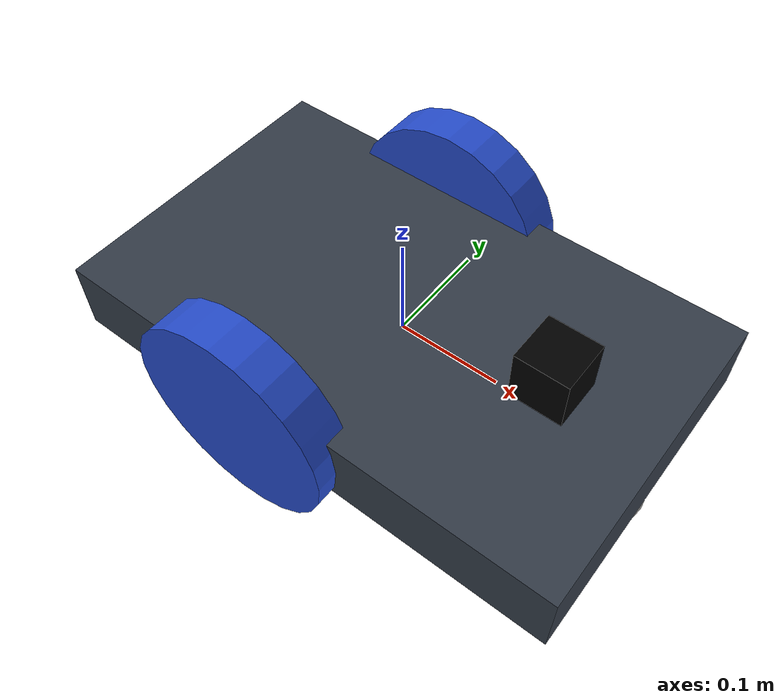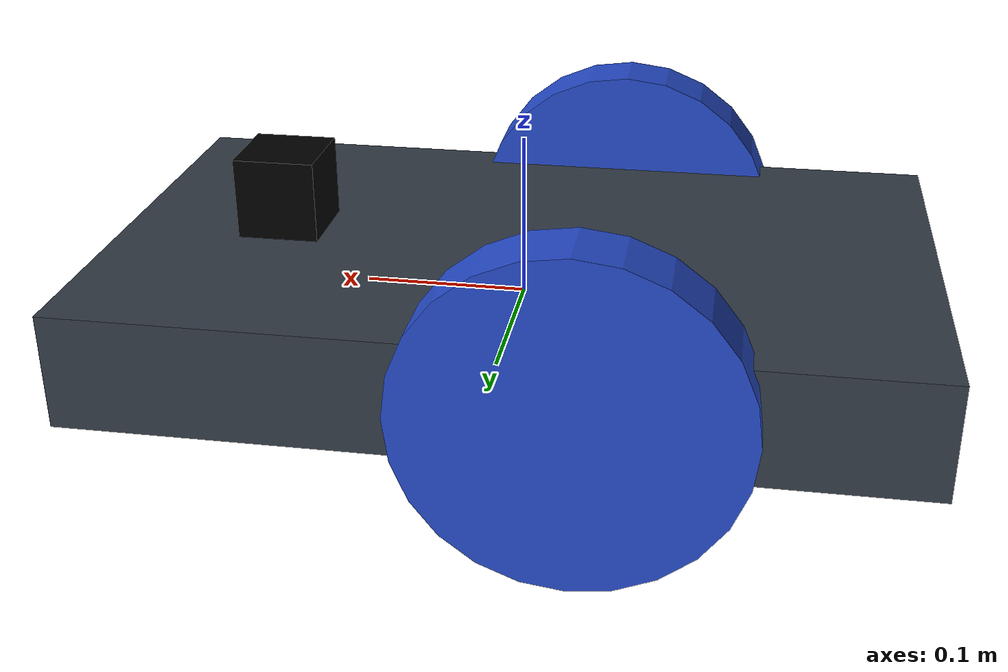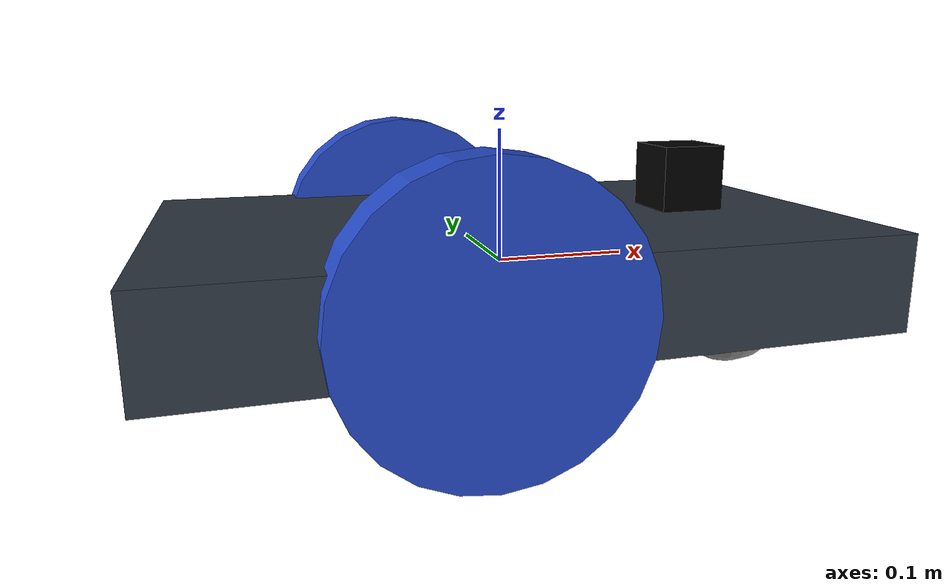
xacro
<?xml version="1.0" ?>
<robot name="mouse" xmlns:xacro="http://www.ros.org/wiki/xacro">
  <material name="black">
    <color rgba="0.0 0.0 0.0 1.0"/>
  </material>
  <material name="blue">
    <color rgba="0.203125 0.23828125 0.28515625 1.0"/>
  </material>
  <material name="green">
    <color rgba="0.0 0.8 0.0 1.0"/>
  </material>
  <material name="grey">
    <color rgba="0.2 0.2 0.2 1.0"/>
  </material>
  <material name="orange">
    <color rgba="1.0 0.423529411765 0.0392156862745 1.0"/>
  </material>
  <material name="brown">
    <color rgba="0.870588235294 0.811764705882 0.764705882353 1.0"/>
  </material>
  <material name="red">
    <color rgba="0.80078125 0.12890625 0.1328125 1.0"/>
  </material>
  <material name="white">
    <color rgba="1.0 1.0 1.0 1.0"/>
  </material>

  <gazebo reference="link_chassis">
    <material>Gazebo/Orange</material>
  </gazebo>
  <gazebo reference="link_caster">
    <material>Gazebo/Gray</material>
  </gazebo>
  <gazebo reference="link_left_wheel">
    <material>Gazebo/Blue</material>
  </gazebo>
  <gazebo reference="link_right_wheel">
    <material>Gazebo/Blue</material>
  </gazebo>

  <!-- Robot description -->
  <link name="link_chassis">
    <collision name="collision_chassis">
      <geometry>
        <box size="0.5 0.3 0.07"/>
      </geometry>
    </collision>
    <visual>
      <origin rpy="0 0 0" xyz="0 0 0"/>
      <geometry>
        <box size="0.5 0.3 0.07"/>
      </geometry>
      <material name="blue"/>
    </visual>
  </link>

  <joint name="fixed_caster_joint" type="fixed">
    <origin rpy="0 0 0" xyz="0 0 0"/>
    <child link="link_caster"/>
    <parent link="link_chassis"/>
  </joint>

  <link name="link_caster">
    <collision name="caster_front_collision">
      <origin rpy="0 0 0" xyz="0.2 0 -0.05"/>
      <geometry>
        <sphere radius="0.05"/>
      </geometry>
      <surface>
        <friction>
          <ode>
            <mu>0</mu>
            <mu2>0</mu2>
            <slip1>1.0</slip1>
            <slip2>1.0</slip2>
          </ode>
        </friction>
      </surface>
    </collision>
    <visual name="caster_front_visual">
      <origin rpy="0 0 0" xyz="0.2 0 -0.05"/>
      <geometry>
        <sphere radius="0.05"/>
      </geometry>
    </visual>
  </link>

  <joint name="fixed_base_joint" type="fixed">
    <origin rpy="0 0 0" xyz="0 0 0"/>
    <child link="chassis_inertia"/>
    <parent link="link_chassis"/>
  </joint>

  <link name="chassis_inertia">
    <inertial>
      <mass value="5"/>
      <origin rpy="0 0 0" xyz="0 0 0.1"/>
      <inertia ixx="0.0395416666667" ixy="0" ixz="0" iyy="0.106208333333" iyz="0" izz="0.106208333333"/>
    </inertial>
  </link>

  <link name="link_right_wheel">
    <inertial>
      <mass value="0.2"/>
      <origin rpy="0 1.5707 1.5707" xyz="0 0 0"/>
      <inertia ixx="0.000526666666667" ixy="0" ixz="0" iyy="0.000526666666667" iyz="0" izz="0.001"/>
    </inertial>
    <collision name="link_right_wheel_collision">
      <origin rpy="0 1.5707 1.5707" xyz="0 0 0"/>
      <geometry>
        <cylinder length="0.04" radius="0.1"/>
      </geometry>
    </collision>
    <visual name="link_right_wheel_visual">
      <origin rpy="0 1.5707 1.5707" xyz="0 0 0"/>
      <geometry>
        <cylinder length="0.04" radius="0.1"/>
      </geometry>
    </visual>
  </link>

  <joint name="joint_right_wheel" type="continuous">
    <origin rpy="0 0 0" xyz="-0.05 0.15 0"/>
    <child link="link_right_wheel"/>
    <parent link="link_chassis"/>
    <axis rpy="0 0 0" xyz="0 1 0"/>
    <limit effort="10000" velocity="1000"/>
    <joint_properties damping="1.0" friction="1.0"/>
  </joint>

  <link name="link_left_wheel">
    <inertial>
      <mass value="0.2"/>
      <origin rpy="0 1.5707 1.5707" xyz="0 0 0"/>
      <inertia ixx="0.000526666666667" ixy="0" ixz="0" iyy="0.000526666666667" iyz="0" izz="0.001"/>
    </inertial>
    <collision name="link_left_wheel_collision">
      <origin rpy="0 1.5707 1.5707" xyz="0 0 0"/>
      <geometry>
        <cylinder length="0.04" radius="0.1"/>
      </geometry>
    </collision>
    <visual name="link_left_wheel_visual">
      <origin rpy="0 1.5707 1.5707" xyz="0 0 0"/>
      <geometry>
        <cylinder length="0.04" radius="0.1"/>
      </geometry>
    </visual>
  </link>

  <joint name="joint_left_wheel" type="continuous">
    <origin rpy="0 0 0" xyz="-0.05 -0.15 0"/>
    <child link="link_left_wheel"/>
    <parent link="link_chassis"/>
    <axis rpy="0 0 0" xyz="0 1 0"/>
    <limit effort="10000" velocity="1000"/>
    <joint_properties damping="1.0" friction="1.0"/>
  </joint>

  <!-- Simulation behavior -->
  <gazebo reference="link_left_wheel">
    <mu1>0.1</mu1>
    <mu2>0.1</mu2>
    <kp>500000.0</kp>
    <kd>10.0</kd>
    <minDepth>0.001</minDepth>
    <maxVel>0.1</maxVel>
    <fdir1>1 0 0</fdir1>
  </gazebo>

  <gazebo reference="link_right_wheel">
    <mu1>0.1</mu1>
    <mu2>0.1</mu2>
    <kp>500000.0</kp>
    <kd>10.0</kd>
    <minDepth>0.001</minDepth>
    <maxVel>0.1</maxVel>
    <fdir1>1 0 0</fdir1>
  </gazebo>

  <gazebo reference="link_chassis">
    <mu1>0.1</mu1>
    <mu2>0.1</mu2>
    <kp>1000000.0</kp>
    <kd>100.0</kd>
    <minDepth>0.001</minDepth>
    <maxVel>1.0</maxVel>
  </gazebo>

  <!-- IMU Sensor -->
  <link name="imu_link"/>

  <joint name="imu_joint" type="fixed">
    <parent link="link_chassis"/>
    <child link="imu_link"/>
    <origin xyz="0 0 0" rpy="0 0 0"/>
  </joint>

  <gazebo reference="imu_link">
    <sensor type="imu" name="imu">
      <always_on>true</always_on>
      <visualize>true</visualize>
    </sensor>
    <material>Gazebo/Grey</material>
  </gazebo>

  <gazebo>
    <plugin name="imu_plugin" filename="libgazebo_ros_imu.so">
      <alwaysOn>true</alwaysOn>
      <bodyName>imu_link</bodyName>
      <frameName>imu_link</frameName>
      <topicName>imu</topicName>
      <serviceName>imu_service</serviceName>
      <gaussianNoise>0.0</gaussianNoise>
      <updateRate>200</updateRate>
      <imu>
        <noise>
          <type>gaussian</type>
          <rate>
            <mean>0.0</mean>
            <stddev>2e-4</stddev>
            <bias_mean>0.0000075</bias_mean>
            <bias_stddev>0.0000008</bias_stddev>
          </rate>
          <accel>
            <mean>0.0</mean>
            <stddev>1.7e-2</stddev>
            <bias_mean>0.1</bias_mean>
            <bias_stddev>0.001</bias_stddev>
          </accel>
        </noise>
      </imu>
    </plugin>
  </gazebo>

  <!-- LiDAR Sensor -->
  <joint name="scan_joint" type="fixed">
    <parent link="link_chassis"/>
    <child link="link_scan"/>
    <origin xyz="0.15 0 0.06" rpy="0 0 -1.57079"/>
  </joint>

  <link name="link_scan">
    <visual>
      <origin xyz="0 0 0" rpy="0 0 0"/>
      <geometry>
        <box size="0.05 0.05 0.05"/>
      </geometry>
      <material name="black"/>
    </visual>
    <collision>
      <origin xyz="0 0 0" rpy="0 0 0"/>
      <geometry>
        <box size="0.05 0.05 0.05"/>
      </geometry>
    </collision>
    <inertial>
      <mass value="0.1" />
      <origin xyz="0 0 0" />
      <inertia ixx="0.001" ixy="0.0" ixz="0.0" iyy="0.001" iyz="0.0" izz="0.001" />
    </inertial>
  </link>

  <gazebo reference="link_scan">
    <sensor type="ray" name="lidar_sensor">
      <pose>0 0 0 0 0 0</pose>
      <visualize>true</visualize>
      <update_rate>5</update_rate>
      <ray>
        <scan>
          <horizontal>
            <samples>360</samples>
            <resolution>1</resolution>
            <min_angle>0.0</min_angle>
            <max_angle>3.14159</max_angle>
          </horizontal>
        </scan>
        <range>
          <min>0.120</min>
          <max>3.5</max>
          <resolution>0.015</resolution>
        </range>
        <noise>
          <type>gaussian</type>
          <mean>0.0</mean>
          <stddev>0.01</stddev>
        </noise>
      </ray>
      <plugin name="gazebo_ros_lidar_controller" filename="libgazebo_ros_laser.so">
        <topicName>scan</topicName>
        <frameName>link_scan</frameName>
      </plugin>
    </sensor>
    <material>Gazebo/FlatBlack</material>
  </gazebo>

  <!-- Controller -->
  <gazebo>
    <plugin name="mouse_controller" filename="libgazebo_ros_diff_drive.so">
      <commandTopic>cmd_vel</commandTopic>
      <odometryTopic>odom</odometryTopic>
      <odometryFrame>odom</odometryFrame>
      <odometrySource>world</odometrySource>
      <publishOdomTF>true</publishOdomTF>
      <robotBaseFrame>link_chassis</robotBaseFrame>
      <publishWheelTF>false</publishWheelTF>
      <publishTf>true</publishTf>
      <publishWheelJointState>true</publishWheelJointState>
      <legacyMode>false</legacyMode>
      <updateRate>30</updateRate>
      <leftJoint>joint_left_wheel</leftJoint>
      <rightJoint>joint_right_wheel</rightJoint>
      <wheelSeparation>0.287</wheelSeparation>
      <wheelDiameter>0.066</wheelDiameter>
      <wheelAcceleration>1</wheelAcceleration>
      <wheelTorque>10</wheelTorque>
      <rosDebugLevel>na</rosDebugLevel>
    </plugin>
  </gazebo>
</robot>
